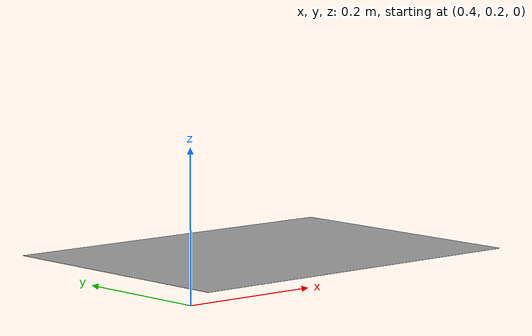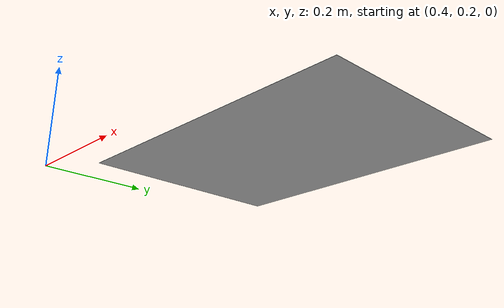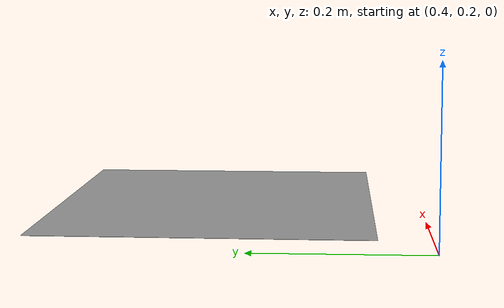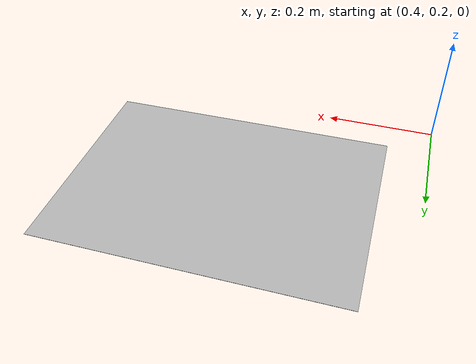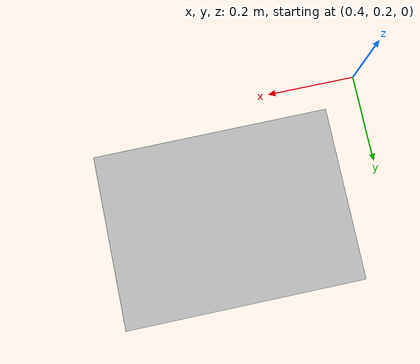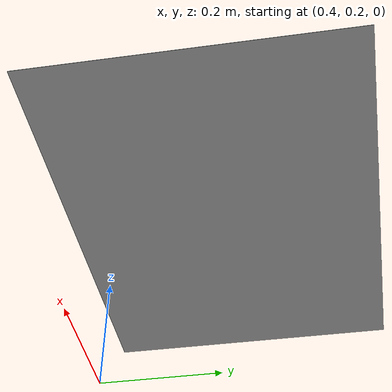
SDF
<?xml version="1.0"?>
<sdf version="1.4">
<model name="gridworld_project_just_mapping">
  <static>true</static>
    <link name="link">
      <pose>0.75 0.457 0 0 0 0</pose>
      <collision name="collision">
        <geometry>
          <plane>
            <normal>0 0 1</normal>
            <size>0.541 0.394</size>
          </plane>
        </geometry>
        <surface>
          <friction>
            <ode>
              <mu>100</mu>
              <mu2>50</mu2>
            </ode>
          </friction>
        </surface>
      </collision>
      <visual name="visual">
        <cast_shadows>false</cast_shadows>
        <geometry>
          <plane>
            <normal>0 0 1</normal>
            <size>0.541 0.394</size>
          </plane>
        </geometry>
        <material>
          <script>
            <uri>model://gridworld_project_just_mapping/materials/gridworld.material</uri>
            <name>GridworldProjectJustMapping/Image</name>
          </script>
        </material>
      </visual>
    </link>
  </model>
</sdf>
